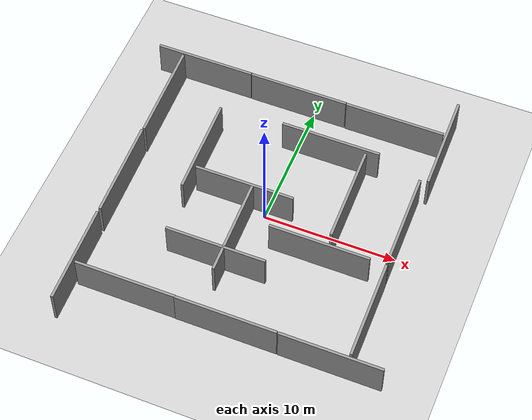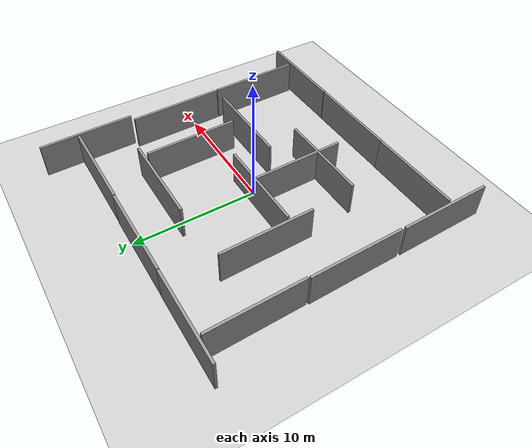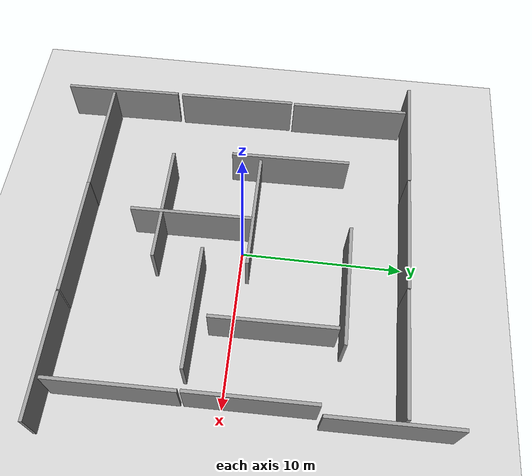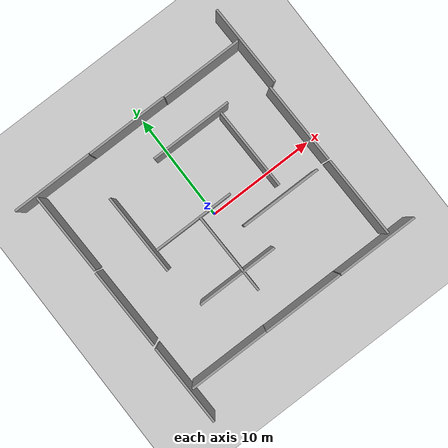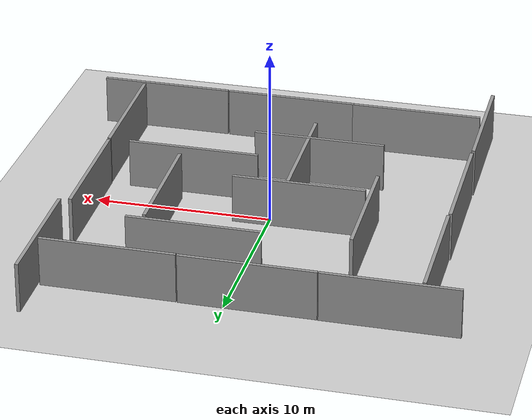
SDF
<sdf version="1.7">
 <world name="default">
  <light name="sun" type="directional">
   <pose>0 0 10 0 -0 0</pose>
   <diffuse>0.8 0.8 0.8 1</diffuse>
   <specular>0.2 0.2 0.2 1</specular>
   <attenuation>
    <range>1000</range>
    <constant>0.9</constant>
    <linear>0.01</linear>
    <quadratic>0.001</quadratic>
   </attenuation>
   <direction>-0.5 0.1 -0.9</direction>
   <spot><inner_angle>0</inner_angle><outer_angle>0</outer_angle><falloff>0</falloff></spot>
  </light>
  <model name="ground_plane">
   <static>1</static>
   <link name="link">
    <collision name="collision">
     <geometry><plane><normal>0 0 1</normal><size>100 100</size></plane></geometry>
     <surface>
      <contact><collide_bitmask>65535</collide_bitmask></contact>
      <friction><ode><mu>100</mu><mu2>50</mu2></ode></friction>
     </surface>
    </collision>
    <visual name="visual">
     <cast_shadows>0</cast_shadows>
     <geometry><plane><normal>0 0 1</normal><size>100 100</size></plane></geometry>
     <material>
      <script><uri>file://media/materials/scripts/gazebo.material</uri><name>Gazebo/Grey</name></script>
     </material>
    </visual>
   </link>
  </model>
  <gravity>0 0 -9.8</gravity>
  <magnetic_field>6e-06 2.3e-05 -4.2e-05</magnetic_field>
  <atmosphere type="adiabatic"/>
  <physics type="ode">
   <max_step_size>0.001</max_step_size>
   <real_time_factor>1</real_time_factor>
   <real_time_update_rate>1000</real_time_update_rate>
  </physics>
  <scene><ambient>0.4 0.4 0.4 1</ambient><background>0.7 0.7 0.7 1</background><shadows>1</shadows></scene>
  <spherical_coordinates>
   <surface_model>EARTH_WGS84</surface_model>
   <latitude_deg>0</latitude_deg>
   <longitude_deg>0</longitude_deg>
   <elevation>0</elevation>
   <heading_deg>0</heading_deg>
  </spherical_coordinates>
  <model name="grey_wall">
   <static>1</static>
   <link name="link">
    <pose>0 0 1.4 0 -0 0</pose>
    <collision name="collision"><geometry><box><size>7.5 0.2 2.8</size></box></geometry></collision>
    <visual name="visual">
     <cast_shadows>0</cast_shadows>
     <geometry><box><size>7.5 0.2 2.8</size></box></geometry>
     <material>
      <script>
       <uri>model://grey_wall/materials/scripts</uri>
       <uri>model://grey_wall/materials/textures</uri>
       <name>vrc/grey_wall</name>
      </script>
     </material>
    </visual>
   </link>
   <pose>-6.23137 -10.0407 0 0 -0 0</pose>
  </model>
  <model name="grey_wall_0">
   <static>1</static>
   <link name="link">
    <pose>0 0 1.4 0 -0 0</pose>
    <collision name="collision"><geometry><box><size>7.5 0.2 2.8</size></box></geometry></collision>
    <visual name="visual">
     <cast_shadows>0</cast_shadows>
     <geometry><box><size>7.5 0.2 2.8</size></box></geometry>
     <material>
      <script>
       <uri>model://grey_wall/materials/scripts</uri>
       <uri>model://grey_wall/materials/textures</uri>
       <name>vrc/grey_wall</name>
      </script>
     </material>
    </visual>
   </link>
   <pose>1.22444 -10.0598 0 0 -0 0</pose>
  </model>
  <model name="grey_wall_0_clone">
   <static>1</static>
   <link name="link">
    <pose>0 0 1.4 0 -0 0</pose>
    <collision name="collision"><geometry><box><size>7.5 0.2 2.8</size></box></geometry></collision>
    <visual name="visual">
     <cast_shadows>0</cast_shadows>
     <geometry><box><size>7.5 0.2 2.8</size></box></geometry>
     <material>
      <script>
       <uri>model://grey_wall/materials/scripts</uri>
       <uri>model://grey_wall/materials/textures</uri>
       <name>vrc/grey_wall</name>
      </script>
     </material>
    </visual>
   </link>
   <pose>8.79956 -10.0723 0 0 -0 0</pose>
  </model>
  <model name="grey_wall_0_clone_0">
   <static>1</static>
   <link name="link">
    <pose>0 0 1.4 0 -0 0</pose>
    <collision name="collision"><geometry><box><size>7.5 0.2 2.8</size></box></geometry></collision>
    <visual name="visual">
     <cast_shadows>0</cast_shadows>
     <geometry><box><size>7.5 0.2 2.8</size></box></geometry>
     <material>
      <script>
       <uri>model://grey_wall/materials/scripts</uri>
       <uri>model://grey_wall/materials/textures</uri>
       <name>vrc/grey_wall</name>
      </script>
     </material>
    </visual>
   </link>
   <pose>6.29397 9.91246 0 0 -0 0</pose>
  </model>
  <model name="grey_wall_0_clone_1">
   <static>1</static>
   <link name="link">
    <pose>0 0 1.4 0 -0 0</pose>
    <collision name="collision"><geometry><box><size>7.5 0.2 2.8</size></box></geometry></collision>
    <visual name="visual">
     <cast_shadows>0</cast_shadows>
     <geometry><box><size>7.5 0.2 2.8</size></box></geometry>
     <material>
      <script>
       <uri>model://grey_wall/materials/scripts</uri>
       <uri>model://grey_wall/materials/textures</uri>
       <name>vrc/grey_wall</name>
      </script>
     </material>
    </visual>
   </link>
   <pose>-1.27249 9.94611 0 0 -0 0</pose>
  </model>
  <model name="grey_wall_0_clone_2">
   <static>1</static>
   <link name="link">
    <pose>0 0 1.4 0 -0 0</pose>
    <collision name="collision"><geometry><box><size>7.5 0.2 2.8</size></box></geometry></collision>
    <visual name="visual">
     <cast_shadows>0</cast_shadows>
     <geometry><box><size>7.5 0.2 2.8</size></box></geometry>
     <material>
      <script>
       <uri>model://grey_wall/materials/scripts</uri>
       <uri>model://grey_wall/materials/textures</uri>
       <name>vrc/grey_wall</name>
      </script>
     </material>
    </visual>
   </link>
   <pose>-8.82924 9.96079 0 0 -0 0</pose>
  </model>
  <model name="grey_wall_0_clone_3">
   <static>1</static>
   <link name="link">
    <pose>0 0 1.4 0 -0 0</pose>
    <collision name="collision"><geometry><box><size>7.5 0.2 2.8</size></box></geometry></collision>
    <visual name="visual">
     <cast_shadows>0</cast_shadows>
     <geometry><box><size>7.5 0.2 2.8</size></box></geometry>
     <material>
      <script>
       <uri>model://grey_wall/materials/scripts</uri>
       <uri>model://grey_wall/materials/textures</uri>
       <name>vrc/grey_wall</name>
      </script>
     </material>
    </visual>
   </link>
   <pose>-10.4674 5.9911 0 0 -0 1.59099</pose>
  </model>
  <model name="grey_wall_0_clone_3_clone">
   <static>1</static>
   <link name="link">
    <pose>0 0 1.4 0 -0 0</pose>
    <collision name="collision"><geometry><box><size>7.5 0.2 2.8</size></box></geometry></collision>
    <visual name="visual">
     <cast_shadows>0</cast_shadows>
     <geometry><box><size>7.5 0.2 2.8</size></box></geometry>
     <material>
      <script>
       <uri>model://grey_wall/materials/scripts</uri>
       <uri>model://grey_wall/materials/textures</uri>
       <name>vrc/grey_wall</name>
      </script>
     </material>
    </visual>
   </link>
   <pose>-10.3887 -1.65722 0 0 -0 1.59099</pose>
  </model>
  <model name="grey_wall_0_clone_3_clone_0">
   <static>1</static>
   <link name="link">
    <pose>0 0 1.4 0 -0 0</pose>
    <collision name="collision"><geometry><box><size>7.5 0.2 2.8</size></box></geometry></collision>
    <visual name="visual">
     <cast_shadows>0</cast_shadows>
     <geometry><box><size>7.5 0.2 2.8</size></box></geometry>
     <material>
      <script>
       <uri>model://grey_wall/materials/scripts</uri>
       <uri>model://grey_wall/materials/textures</uri>
       <name>vrc/grey_wall</name>
      </script>
     </material>
    </visual>
   </link>
   <pose>-10.278 -9.43867 0 0 -0 1.59099</pose>
  </model>
  <model name="grey_wall_0_clone_3_clone_1">
   <static>1</static>
   <link name="link">
    <pose>0 0 1.4 0 -0 0</pose>
    <collision name="collision"><geometry><box><size>7.5 0.2 2.8</size></box></geometry></collision>
    <visual name="visual">
     <cast_shadows>0</cast_shadows>
     <geometry><box><size>7.5 0.2 2.8</size></box></geometry>
     <material>
      <script>
       <uri>model://grey_wall/materials/scripts</uri>
       <uri>model://grey_wall/materials/textures</uri>
       <name>vrc/grey_wall</name>
      </script>
     </material>
    </visual>
   </link>
   <pose>10.0376 -6.04623 0 0 -0 1.59099</pose>
  </model>
  <model name="grey_wall_0_clone_3_clone_2">
   <static>1</static>
   <link name="link">
    <pose>0 0 1.4 0 -0 0</pose>
    <collision name="collision"><geometry><box><size>7.5 0.2 2.8</size></box></geometry></collision>
    <visual name="visual">
     <cast_shadows>0</cast_shadows>
     <geometry><box><size>7.5 0.2 2.8</size></box></geometry>
     <material>
      <script>
       <uri>model://grey_wall/materials/scripts</uri>
       <uri>model://grey_wall/materials/textures</uri>
       <name>vrc/grey_wall</name>
      </script>
     </material>
    </visual>
   </link>
   <pose>9.86483 1.6136 0 0 -0 1.59099</pose>
  </model>
  <model name="grey_wall_0_clone_3_clone_3">
   <static>1</static>
   <link name="link">
    <pose>0 0 1.4 0 -0 0</pose>
    <collision name="collision"><geometry><box><size>7.5 0.2 2.8</size></box></geometry></collision>
    <visual name="visual">
     <cast_shadows>0</cast_shadows>
     <geometry><box><size>7.5 0.2 2.8</size></box></geometry>
     <material>
      <script>
       <uri>model://grey_wall/materials/scripts</uri>
       <uri>model://grey_wall/materials/textures</uri>
       <name>vrc/grey_wall</name>
      </script>
     </material>
    </visual>
   </link>
   <pose>10.2831 9.20946 0 0 -0 1.59099</pose>
  </model>
  <model name="grey_wall_0_clone_3_clone_4">
   <static>1</static>
   <link name="link">
    <pose>0 0 1.4 0 -0 0</pose>
    <collision name="collision"><geometry><box><size>7.5 0.2 2.8</size></box></geometry></collision>
    <visual name="visual">
     <cast_shadows>0</cast_shadows>
     <geometry><box><size>7.5 0.2 2.8</size></box></geometry>
     <material>
      <script>
       <uri>model://grey_wall/materials/scripts</uri>
       <uri>model://grey_wall/materials/textures</uri>
       <name>vrc/grey_wall</name>
      </script>
     </material>
    </visual>
   </link>
   <pose>-1.03458 -3.29968 0 0 -0 1.59099</pose>
  </model>
  <model name="grey_wall_0_clone_3_clone_5">
   <static>1</static>
   <link name="link">
    <pose>0 0 1.4 0 -0 0</pose>
    <collision name="collision"><geometry><box><size>7.5 0.2 2.8</size></box></geometry></collision>
    <visual name="visual">
     <cast_shadows>0</cast_shadows>
     <geometry><box><size>7.5 0.2 2.8</size></box></geometry>
     <material>
      <script>
       <uri>model://grey_wall/materials/scripts</uri>
       <uri>model://grey_wall/materials/textures</uri>
       <name>vrc/grey_wall</name>
      </script>
     </material>
    </visual>
   </link>
   <pose>5.46129 2.38487 0 0 -0 1.59099</pose>
  </model>
  <model name="grey_wall_0_clone_3_clone_6">
   <static>1</static>
   <link name="link">
    <pose>0 0 1.4 0 -0 0</pose>
    <collision name="collision"><geometry><box><size>7.5 0.2 2.8</size></box></geometry></collision>
    <visual name="visual">
     <cast_shadows>0</cast_shadows>
     <geometry><box><size>7.5 0.2 2.8</size></box></geometry>
     <material>
      <script>
       <uri>model://grey_wall/materials/scripts</uri>
       <uri>model://grey_wall/materials/textures</uri>
       <name>vrc/grey_wall</name>
      </script>
     </material>
    </visual>
   </link>
   <pose>-5.8641 2.38488 0 0 -0 1.59099</pose>
  </model>
  <model name="grey_wall_0_clone_1_clone">
   <static>1</static>
   <link name="link">
    <pose>0 0 1.4 0 -0 0</pose>
    <collision name="collision"><geometry><box><size>7.5 0.2 2.8</size></box></geometry></collision>
    <visual name="visual">
     <cast_shadows>0</cast_shadows>
     <geometry><box><size>7.5 0.2 2.8</size></box></geometry>
     <material>
      <script>
       <uri>model://grey_wall/materials/scripts</uri>
       <uri>model://grey_wall/materials/textures</uri>
       <name>vrc/grey_wall</name>
      </script>
     </material>
    </visual>
   </link>
   <pose>-1.7547 0.506858 0 0 -0 0</pose>
  </model>
  <model name="grey_wall_0_clone_1_clone_0">
   <static>1</static>
   <link name="link">
    <pose>0 0 1.4 0 -0 0</pose>
    <collision name="collision"><geometry><box><size>7.5 0.2 2.8</size></box></geometry></collision>
    <visual name="visual">
     <cast_shadows>0</cast_shadows>
     <geometry><box><size>7.5 0.2 2.8</size></box></geometry>
     <material>
      <script>
       <uri>model://grey_wall/materials/scripts</uri>
       <uri>model://grey_wall/materials/textures</uri>
       <name>vrc/grey_wall</name>
      </script>
     </material>
    </visual>
   </link>
   <pose>5.00308 -2.25654 0 0 -0 0</pose>
  </model>
  <model name="grey_wall_0_clone_1_clone_1">
   <static>1</static>
   <link name="link">
    <pose>0 0 1.4 0 -0 0</pose>
    <collision name="collision"><geometry><box><size>7.5 0.2 2.8</size></box></geometry></collision>
    <visual name="visual">
     <cast_shadows>0</cast_shadows>
     <geometry><box><size>7.5 0.2 2.8</size></box></geometry>
     <material>
      <script>
       <uri>model://grey_wall/materials/scripts</uri>
       <uri>model://grey_wall/materials/textures</uri>
       <name>vrc/grey_wall</name>
      </script>
     </material>
    </visual>
   </link>
   <pose>2.58643 6.46983 0 0 -0 0</pose>
  </model>
  <model name="grey_wall_0_clone_1_clone_2">
   <static>1</static>
   <link name="link">
    <pose>0 0 1.4 0 -0 0</pose>
    <collision name="collision"><geometry><box><size>7.5 0.2 2.8</size></box></geometry></collision>
    <visual name="visual">
     <cast_shadows>0</cast_shadows>
     <geometry><box><size>7.5 0.2 2.8</size></box></geometry>
     <material>
      <script>
       <uri>model://grey_wall/materials/scripts</uri>
       <uri>model://grey_wall/materials/textures</uri>
       <name>vrc/grey_wall</name>
      </script>
     </material>
    </visual>
   </link>
   <pose>-1.61001 -5.12347 0 0 -0 0</pose>
  </model>
 </world>
</sdf>
